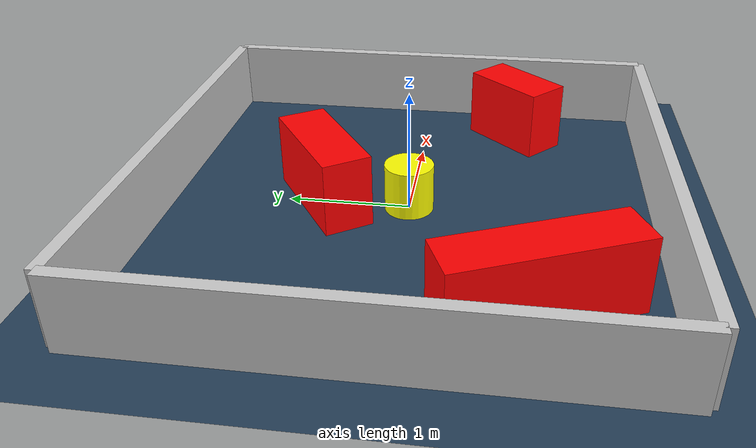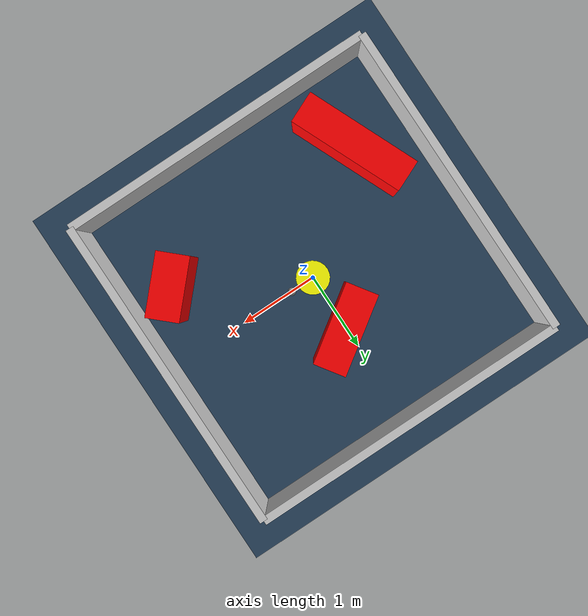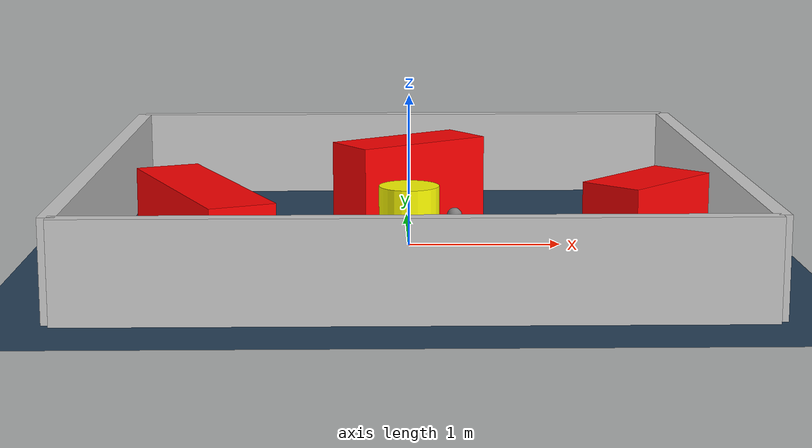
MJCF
<?xml version="1.0" ?>
<mujoco model="generated_environment">
  <option timestep="0.01" integrator="RK4" cone="elliptic"/>
  <default>
    <geom density="1"/>
  </default>
  <asset>
    <texture builtin="gradient" height="3072" rgb1="0.3 0.5 0.7" rgb2="0 0 0" type="skybox" width="512"/>
    <texture builtin="checker" height="300" mark="edge" markrgb="0.8 0.8 0.8" name="groundplane" rgb1="0.2 0.3 0.4" rgb2="0.1 0.2 0.3" type="2d" width="300"/>
    <material name="groundplane" reflectance="0.2" texrepeat="5 5" texture="groundplane" texuniform="true"/>
    <material name="robot" rgba="0.0 1.0 0.0 1"/>
  </asset>
  <worldbody>
    <light dir="0 0 -1" directional="true" pos="0 0 1.5"/>
    <geom condim="4" friction="1.0 0.005 0.001" material="groundplane" name="floor" size="0 0 0.05" type="plane"/>
    <body name="walls">
      <geom name="wall_1" condim="4" pos="-2.0 0.0 0.3" rgba="0.800000011920929 0.800000011920929 0.800000011920929 1.0" size="0.05 2.0 0.3" type="box"/>
      <geom name="wall_2" condim="4" pos="2.0 0.0 0.3" rgba="0.800000011920929 0.800000011920929 0.800000011920929 1.0" size="0.05 2.0 0.3" type="box"/>
      <geom name="wall_3" condim="4" pos="0.0 -2.0 0.3" rgba="0.800000011920929 0.800000011920929 0.800000011920929 1.0" size="2.0 0.05 0.3" type="box"/>
      <geom name="wall_4" condim="4" pos="0.0 2.0 0.3" rgba="0.800000011920929 0.800000011920929 0.800000011920929 1.0" size="2.0 0.05 0.3" type="box"/>
    </body>
    <body name="robot">
      <joint name="joint_x" type="slide" pos="0 0 0" axis="1 0 0"/>
      <joint name="joint_y" type="slide" pos="0 0 0" axis="0 1 0"/>
      <geom name="robot" type="sphere" pos="0.3 0.0 0.2" size="0.05" mass="5." friction="1.0 0.005 0.0001" condim="4" rgba="0.5 0.5 0.5 1.0"/>
      <site name="sensor_ball"/>
    </body>
    <body name="obstacle_movable_1">
      <geom name="obstacle_movable_1" condim="4" pos="0.0 0.0 0.2" euler="0 0 0.0" friction="1.0 0.005 0.001" rgba="1.0 1.0 0.0 1.0" size="0.2 0.2 0.0" type="cylinder" mass="0.1"/>
      <joint type="free"/>
    </body>
    <body name="obstacle_2_static">
      <geom name="obstacle_2_static" condim="4" pos="-1.2529645228127677 -1.0300305171694362 0.3" euler="0 0 293.51836577181257" friction="1.0 0.005 0.001" rgba="1 0 0 1" size="0.7284558625720468 0.2 0.3" type="box"/>
    </body>
    <body name="obstacle_3_static">
      <geom name="obstacle_3_static" condim="4" pos="0.013082665739787558 0.7005365006280113 0.3" euler="0 0 214.39336424121947" friction="1.0 0.005 0.001" rgba="1 0 0 1" size="0.5049924255499683 0.2 0.3" type="box"/>
    </body>
    <body name="obstacle_4_static">
      <geom name="obstacle_4_static" condim="4" pos="1.438528935554704 -0.8298709073339966 0.3" euler="0 0 227.1548839067575" friction="1.0 0.005 0.001" rgba="1 0 0 1" size="0.389341872330206 0.2 0.3" type="box"/>
    </body>
  </worldbody>
  <actuator>
    <motor name="actuator_x" joint="joint_x" gear="1" ctrlrange="-1 1"/>
    <motor name="actuator_y" joint="joint_y" gear="1" ctrlrange="-1 1"/>
  </actuator>
</mujoco>
